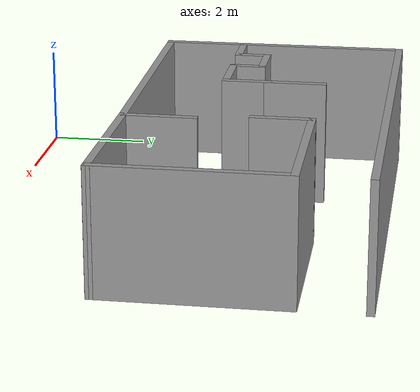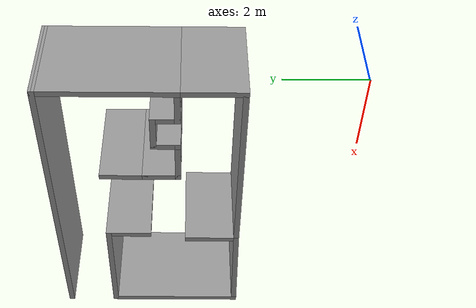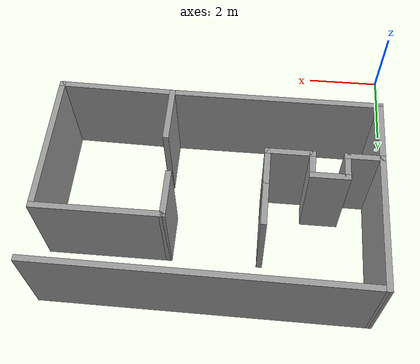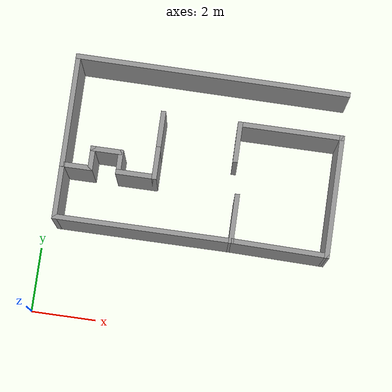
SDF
<?xml version='1.0'?>
<sdf version='1.7'>
  <model name='home'>
    <pose>4.39902 3.89351 0 0 -0 0</pose>
    <link name='Wall_11'>
      <collision name='Wall_11_Collision'>
        <geometry>
          <box>
            <size>3.5 0.15 2.5</size>
          </box>
        </geometry>
        <pose>0 0 1.25 0 -0 0</pose>
      </collision>
      <visual name='Wall_11_Visual'>
        <pose>0 0 1.25 0 -0 0</pose>
        <geometry>
          <box>
            <size>3.5 0.15 2.5</size>
          </box>
        </geometry>
        <material>
          <script>
            <uri>file://media/materials/scripts/gazebo.material</uri>
            <name>Gazebo/Grey</name>
          </script>
          <ambient>1 1 1 1</ambient>
        </material>
        <meta>
          <layer>0</layer>
        </meta>
      </visual>
      <pose>-3.92726 2.14306 0 0 -0 -1.5708</pose>
    </link>
    <link name='Wall_12'>
      <collision name='Wall_12_Collision'>
        <geometry>
          <box>
            <size>1 0.15 2.5</size>
          </box>
        </geometry>
        <pose>0 0 1.25 0 -0 0</pose>
      </collision>
      <visual name='Wall_12_Visual'>
        <pose>0 0 1.25 0 -0 0</pose>
        <geometry>
          <box>
            <size>1 0.15 2.5</size>
          </box>
        </geometry>
        <material>
          <script>
            <uri>file://media/materials/scripts/gazebo.material</uri>
            <name>Gazebo/Grey</name>
          </script>
          <ambient>1 1 1 1</ambient>
        </material>
        <meta>
          <layer>0</layer>
        </meta>
      </visual>
      <pose>-3.50226 0.468056 0 0 -0 0</pose>
    </link>
    <link name='Wall_13'>
      <collision name='Wall_13_Collision'>
        <geometry>
          <box>
            <size>0.75 0.15 2.5</size>
          </box>
        </geometry>
        <pose>0 0 1.25 0 -0 0</pose>
      </collision>
      <visual name='Wall_13_Visual'>
        <pose>0 0 1.25 0 -0 0</pose>
        <geometry>
          <box>
            <size>0.75 0.15 2.5</size>
          </box>
        </geometry>
        <material>
          <script>
            <uri>file://media/materials/scripts/gazebo.material</uri>
            <name>Gazebo/Grey</name>
          </script>
          <ambient>1 1 1 1</ambient>
        </material>
        <meta>
          <layer>0</layer>
        </meta>
      </visual>
      <pose>-3.07726 0.768056 0 0 -0 1.5708</pose>
    </link>
    <link name='Wall_14'>
      <collision name='Wall_14_Collision'>
        <geometry>
          <box>
            <size>1 0.15 2.5</size>
          </box>
        </geometry>
        <pose>0 0 1.25 0 -0 0</pose>
      </collision>
      <visual name='Wall_14_Visual'>
        <pose>0 0 1.25 0 -0 0</pose>
        <geometry>
          <box>
            <size>1 0.15 2.5</size>
          </box>
        </geometry>
        <material>
          <script>
            <uri>file://media/materials/scripts/gazebo.material</uri>
            <name>Gazebo/Grey</name>
          </script>
          <ambient>1 1 1 1</ambient>
        </material>
        <meta>
          <layer>0</layer>
        </meta>
      </visual>
      <pose>-2.65226 1.06806 0 0 -0 0</pose>
    </link>
    <link name='Wall_15'>
      <collision name='Wall_15_Collision'>
        <geometry>
          <box>
            <size>0.75 0.15 2.5</size>
          </box>
        </geometry>
        <pose>0 0 1.25 0 -0 0</pose>
      </collision>
      <visual name='Wall_15_Visual'>
        <pose>0 0 1.25 0 -0 0</pose>
        <geometry>
          <box>
            <size>0.75 0.15 2.5</size>
          </box>
        </geometry>
        <material>
          <script>
            <uri>file://media/materials/scripts/gazebo.material</uri>
            <name>Gazebo/Grey</name>
          </script>
          <ambient>1 1 1 1</ambient>
        </material>
        <meta>
          <layer>0</layer>
        </meta>
      </visual>
      <pose>-2.22726 0.768056 0 0 -0 -1.5708</pose>
    </link>
    <link name='Wall_16'>
      <collision name='Wall_16_Collision'>
        <geometry>
          <box>
            <size>1.25 0.15 2.5</size>
          </box>
        </geometry>
        <pose>0 0 1.25 0 -0 0</pose>
      </collision>
      <visual name='Wall_16_Visual'>
        <pose>0 0 1.25 0 -0 0</pose>
        <geometry>
          <box>
            <size>1.25 0.15 2.5</size>
          </box>
        </geometry>
        <material>
          <script>
            <uri>file://media/materials/scripts/gazebo.material</uri>
            <name>Gazebo/Grey</name>
          </script>
          <ambient>1 1 1 1</ambient>
        </material>
        <meta>
          <layer>0</layer>
        </meta>
      </visual>
      <pose>-1.67726 0.468056 0 0 -0 0</pose>
    </link>
    <link name='Wall_17'>
      <collision name='Wall_17_Collision'>
        <geometry>
          <box>
            <size>1 0.15 2.5</size>
          </box>
        </geometry>
        <pose>0 0 1.25 0 -0 0</pose>
      </collision>
      <visual name='Wall_17_Visual'>
        <pose>0 0 1.25 0 -0 0</pose>
        <geometry>
          <box>
            <size>1 0.15 2.5</size>
          </box>
        </geometry>
        <material>
          <script>
            <uri>file://media/materials/scripts/gazebo.material</uri>
            <name>Gazebo/Grey</name>
          </script>
          <ambient>1 1 1 1</ambient>
        </material>
        <meta>
          <layer>0</layer>
        </meta>
      </visual>
      <pose>-1.12726 0.893056 0 0 -0 1.5708</pose>
    </link>
    <link name='Wall_19'>
      <collision name='Wall_19_Collision'>
        <geometry>
          <box>
            <size>1.25 0.15 2.5</size>
          </box>
        </geometry>
        <pose>0 0 1.25 0 -0 0</pose>
      </collision>
      <visual name='Wall_19_Visual'>
        <pose>0 0 1.25 0 -0 0</pose>
        <geometry>
          <box>
            <size>1.25 0.15 2.5</size>
          </box>
        </geometry>
        <material>
          <script>
            <uri>file://media/materials/scripts/gazebo.material</uri>
            <name>Gazebo/Grey</name>
          </script>
          <ambient>1 1 1 1</ambient>
        </material>
        <meta>
          <layer>0</layer>
        </meta>
      </visual>
      <pose>1.22274 1.86806 0 0 -0 1.5708</pose>
    </link>
    <link name='Wall_20'>
      <collision name='Wall_20_Collision'>
        <geometry>
          <box>
            <size>3.25 0.15 2.5</size>
          </box>
        </geometry>
        <pose>0 0 1.25 0 -0 0</pose>
      </collision>
      <visual name='Wall_20_Visual'>
        <pose>0 0 1.25 0 -0 0</pose>
        <geometry>
          <box>
            <size>3.25 0.15 2.5</size>
          </box>
        </geometry>
        <material>
          <script>
            <uri>file://media/materials/scripts/gazebo.material</uri>
            <name>Gazebo/Grey</name>
          </script>
          <ambient>1 1 1 1</ambient>
        </material>
        <meta>
          <layer>0</layer>
        </meta>
      </visual>
      <pose>2.77274 2.41806 0 0 -0 0</pose>
    </link>
    <link name='Wall_22'>
      <collision name='Wall_22_Collision'>
        <geometry>
          <box>
            <size>8.40015 0.15 2.5</size>
          </box>
        </geometry>
        <pose>0 0 1.25 0 -0 0</pose>
      </collision>
      <visual name='Wall_22_Visual'>
        <pose>0 0 1.25 0 -0 0</pose>
        <geometry>
          <box>
            <size>8.40015 0.15 2.5</size>
          </box>
        </geometry>
        <material>
          <script>
            <uri>file://media/materials/scripts/gazebo.material</uri>
            <name>Gazebo/Grey</name>
          </script>
          <ambient>1 1 1 1</ambient>
        </material>
        <meta>
          <layer>0</layer>
        </meta>
      </visual>
      <pose>0.197736 3.79306 0 0 -0 3.13553</pose>
    </link>
    <link name='Wall_24'>
      <collision name='Wall_24_Collision'>
        <geometry>
          <box>
            <size>1.75 0.15 2.5</size>
          </box>
        </geometry>
        <pose>0 0 1.25 0 -0 0</pose>
      </collision>
      <visual name='Wall_24_Visual'>
        <pose>0 0 1.25 0 -0 0</pose>
        <geometry>
          <box>
            <size>1.75 0.15 2.5</size>
          </box>
        </geometry>
        <material>
          <script>
            <uri>file://media/materials/scripts/gazebo.material</uri>
            <name>Gazebo/Grey</name>
          </script>
          <ambient>1 1 1 1</ambient>
        </material>
        <meta>
          <layer>0</layer>
        </meta>
      </visual>
      <pose>-3.92726 -0.331944 0 0 -0 -1.5708</pose>
    </link>
    <link name='Wall_25'>
      <collision name='Wall_25_Collision'>
        <geometry>
          <box>
            <size>5.5 0.15 2.5</size>
          </box>
        </geometry>
        <pose>0 0 1.25 0 -0 0</pose>
      </collision>
      <visual name='Wall_25_Visual'>
        <pose>0 0 1.25 0 -0 0</pose>
        <geometry>
          <box>
            <size>5.5 0.15 2.5</size>
          </box>
        </geometry>
        <material>
          <script>
            <uri>file://media/materials/scripts/gazebo.material</uri>
            <name>Gazebo/Grey</name>
          </script>
          <ambient>1 1 1 1</ambient>
        </material>
        <meta>
          <layer>0</layer>
        </meta>
      </visual>
      <pose>-1.25226 -1.13194 0 0 -0 0</pose>
    </link>
    <link name='Wall_26'>
      <collision name='Wall_26_Collision'>
        <geometry>
          <box>
            <size>1.5 0.15 2.5</size>
          </box>
        </geometry>
        <pose>0 0 1.25 0 -0 0</pose>
      </collision>
      <visual name='Wall_26_Visual'>
        <pose>0 0 1.25 0 -0 0</pose>
        <geometry>
          <box>
            <size>1.5 0.15 2.5</size>
          </box>
        </geometry>
        <material>
          <script>
            <uri>file://media/materials/scripts/gazebo.material</uri>
            <name>Gazebo/Grey</name>
          </script>
          <ambient>1 1 1 1</ambient>
        </material>
        <meta>
          <layer>0</layer>
        </meta>
      </visual>
      <pose>1.42274 -0.456944 0 0 -0 1.5708</pose>
    </link>
    <link name='Wall_28'>
      <collision name='Wall_28_Collision'>
        <geometry>
          <box>
            <size>3.75 0.15 2.5</size>
          </box>
        </geometry>
        <pose>0 0 1.25 0 -0 0</pose>
      </collision>
      <visual name='Wall_28_Visual'>
        <pose>0 0 1.25 0 -0 0</pose>
        <geometry>
          <box>
            <size>3.75 0.15 2.5</size>
          </box>
        </geometry>
        <material>
          <script>
            <uri>file://media/materials/scripts/gazebo.material</uri>
            <name>Gazebo/Grey</name>
          </script>
          <ambient>1 1 1 1</ambient>
        </material>
        <meta>
          <layer>0</layer>
        </meta>
      </visual>
      <pose>4.32274 0.618056 0 0 -0 -1.5708</pose>
    </link>
    <link name='Wall_29'>
      <collision name='Wall_29_Collision'>
        <geometry>
          <box>
            <size>3.05043 0.15 2.5</size>
          </box>
        </geometry>
        <pose>0 0 1.25 0 -0 0</pose>
      </collision>
      <visual name='Wall_29_Visual'>
        <pose>0 0 1.25 0 -0 0</pose>
        <geometry>
          <box>
            <size>3.05043 0.15 2.5</size>
          </box>
        </geometry>
        <material>
          <script>
            <uri>file://media/materials/scripts/gazebo.material</uri>
            <name>Gazebo/Grey</name>
          </script>
          <ambient>1 1 1 1</ambient>
        </material>
        <meta>
          <layer>0</layer>
        </meta>
      </visual>
      <pose>2.87274 -1.15694 0 0 -0 3.12435</pose>
    </link>
    <link name='Wall_31'>
      <collision name='Wall_31_Collision'>
        <geometry>
          <box>
            <size>1.25 0.15 2.5</size>
          </box>
        </geometry>
        <pose>0 0 1.25 0 -0 0</pose>
      </collision>
      <visual name='Wall_31_Visual'>
        <pose>0 0 1.25 0 -0 0</pose>
        <geometry>
          <box>
            <size>1.25 0.15 2.5</size>
          </box>
        </geometry>
        <material>
          <script>
            <uri>file://media/materials/scripts/gazebo.material</uri>
            <name>Gazebo/Grey</name>
          </script>
          <ambient>1 1 1 1</ambient>
        </material>
        <meta>
          <layer>0</layer>
        </meta>
      </visual>
      <pose>-1.12726 1.86806 0 0 -0 1.5708</pose>
    </link>
    <static>1</static>
  </model>
</sdf>
